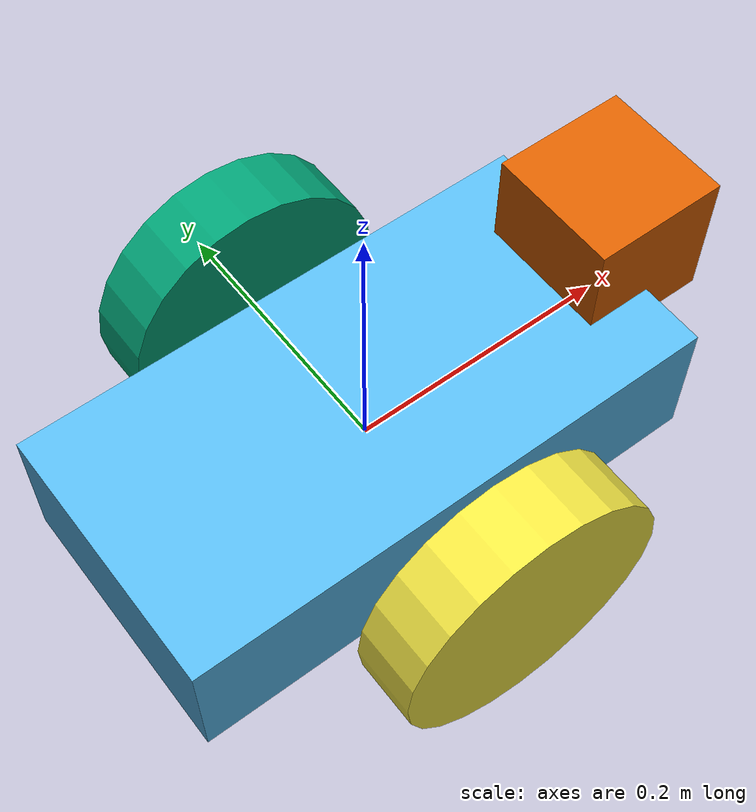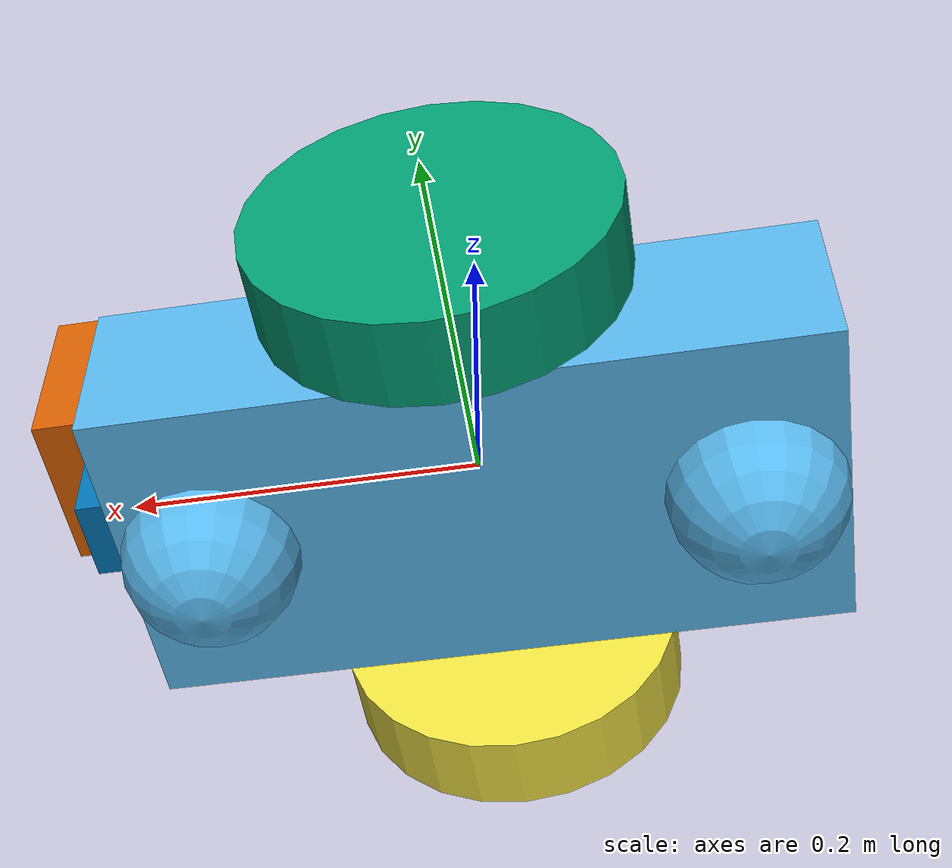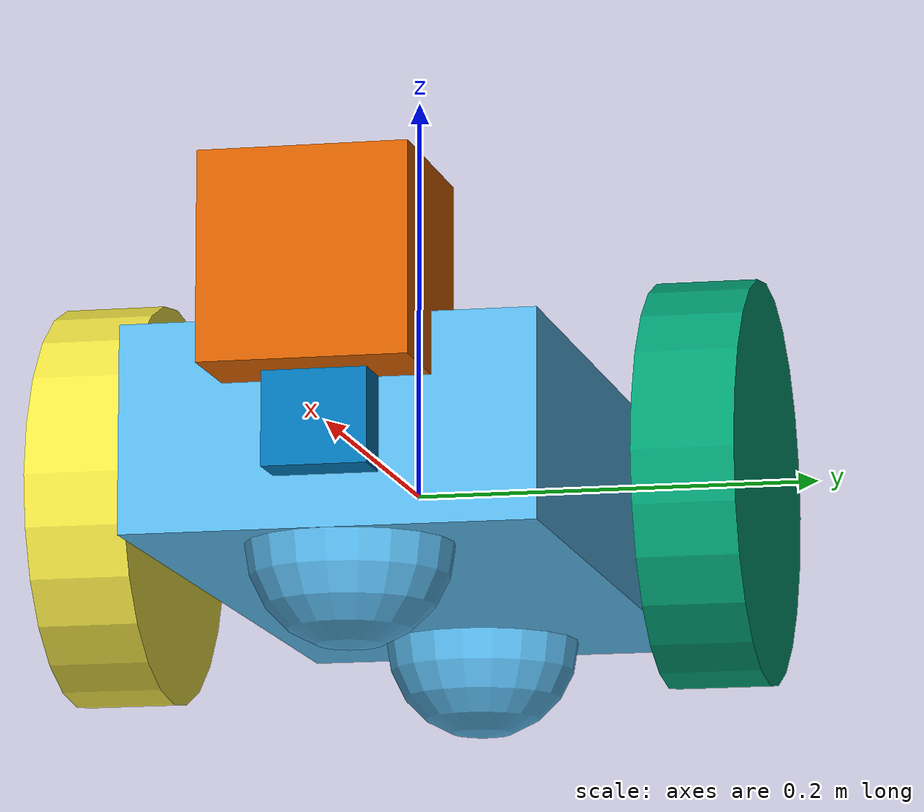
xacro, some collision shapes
<?xml version='1.0'?>

<robot name="my_robot" xmlns:xacro="http://www.ros.org/wiki/xacro">

  <xacro:include filename="$(find my_robot)/urdf/my_robot.gazebo" />

  <link name="robot_footprint"></link>

  <joint name="robot_footprint_joint" type="fixed">
    <origin xyz="0 0 0" rpy="0 0 0" />
    <parent link="robot_footprint"/>
    <child link="chassis" />
  </joint>

  <link name='chassis'>
    <pose>0 0 0.1 0 0 0</pose>

    <inertial>
      <mass value="15.0"/>
      <origin xyz="0.0 0 0" rpy=" 0 0 0"/>
      <inertia
          ixx="0.1" ixy="0" ixz="0"
          iyy="0.1" iyz="0"
          izz="0.1"
      />
    </inertial>

    <collision name='collision'>
      <origin xyz="0 0 0" rpy=" 0 0 0"/>
      <geometry>
        <box size=".4 .2 .1"/>
      </geometry>
    </collision>

    <visual name='chassis_visual'>
      <origin xyz="0 0 0" rpy=" 0 0 0"/>
      <geometry>
        <box size=".4 .2 .1"/>
      </geometry>
    </visual>

    <collision name='back_caster_collision'>
      <origin xyz="-0.15 0 -0.05" rpy=" 0 0 0"/>
      <geometry>
        <sphere radius="0.0499"/>
      </geometry>
    </collision>

    <visual name='back_caster_visual'>
      <origin xyz="-0.15 0 -0.05" rpy=" 0 0 0"/>
      <geometry>
        <sphere radius="0.05"/>
      </geometry>
    </visual>

    <collision name='front_caster_collision'>
      <origin xyz="0.15 0 -0.05" rpy=" 0 0 0"/>
      <geometry>
        <sphere radius="0.0499"/>
      </geometry>
    </collision>

    <visual name='front_caster_visual'>
      <origin xyz="0.15 0 -0.05" rpy=" 0 0 0"/>
      <geometry>
        <sphere radius="0.05"/>
      </geometry>
    </visual>

  </link>

  <link name="left_wheel">

	<collision name='left_wheel_collision'>
      <origin xyz="0.0 0 0" rpy=" 0 1.5707 1.5707"/>
      <geometry>
        <cylinder length="0.05" radius="0.1"/>
      </geometry>
    </collision>

    <inertial>
      <mass value=".5"/>
      <origin xyz="0 0 0" rpy=" 0 1.5707 1.5707"/>
      <inertia
          ixx="0.1" ixy="0" ixz="0"
          iyy="0.1" iyz="0"
          izz="0.1"
      />
    </inertial>

	<visual name='left_wheel__visual'>
      <origin xyz="0.0 0 0" rpy=" 0 1.5707 1.5707"/>
      <geometry>
        <cylinder length="0.05" radius="0.1"/>
      </geometry>
    </visual>

  </link>

  <link name="right_wheel">

	<collision name='right_wheel_collision'>
      <origin xyz="0.0 0 0" rpy=" 0 1.5707 1.5707"/>
      <geometry>
        <cylinder length="0.05" radius="0.1"/>
	  </geometry>
    </collision>

    <inertial>
      <mass value=".5"/>
      <origin xyz="0 0 0" rpy=" 0 1.5707 1.5707"/>
      <inertia
          ixx="0.1" ixy="0" ixz="0"
          iyy="0.1" iyz="0"
          izz="0.1"
      />
    </inertial>

	<visual name='right_wheel_visual'>
      <origin xyz="0.0 0 0" rpy=" 0 1.5707 1.5707"/>
      <geometry>
        <cylinder length="0.05" radius="0.1"/>
      </geometry>
    </visual>

  </link>

  <joint type="continuous" name="left_wheel_hinge">
    <origin xyz="0 0.15 0" rpy="0 0 0"/>
    <child link="left_wheel"/>
    <parent link="chassis"/>
    <axis xyz="0 1 0" rpy="0 0 0"/>
    <limit effort="10000" velocity="1000"/>
    <dynamics damping="1.0" friction="1.0"/>
  </joint>

  <joint type="continuous" name="right_wheel_hinge">
    <origin xyz="0 -0.15 0" rpy="0 0 0"/>
    <child link="right_wheel"/>
    <parent link="chassis"/>
    <axis xyz="0 1 0" rpy="0 0 0"/>
    <limit effort="10000" velocity="1000"/>
    <dynamics damping="1.0" friction="1.0"/>
  </joint>

   <link name='camera'>
    <inertial>
      <origin xyz="0 0 0" rpy="0 0 0"/>
      <mass value="0.1"/>
      <box_inertia m="0.1" x="0.05" y="0.05" z="0.05"/>
      <inertia
          ixx="1e-6" ixy="0" ixz="0"
          iyy="1e-6" iyz="0"
          izz="1e-6"
      />
    </inertial>

    <visual name='camera_visual'>
      <origin xyz="0 0 0" rpy="0 0 0"/>
      <geometry>
        <box size=".05 .05 .05"/>
      </geometry>
    </visual>

    <collision name='camera_collision'>
      <origin xyz="0 0 0" rpy="0 0 0"/>
      <geometry>
        <box size=".05 .05 .05"/>
      </geometry>
    </collision>
  </link>

  <joint type="fixed" name="camera_joint">
    <origin xyz="0.2 0 0" rpy="0 0 0"/>
    <child link="camera"/>
    <parent link="chassis"/>
    <axis xyz="0 1 0"/>
  </joint>

  <link name='hokuyo'>
    <inertial>
      <origin xyz="0 0 0" rpy="0 0 0"/>
      <mass value="1e-5"/>
      <inertia
          ixx="1e-6" ixy="0" ixz="0"
          iyy="1e-6" iyz="0"
          izz="1e-6"
      />
    </inertial>

    <visual name='hokuyo_visual'>
      <origin xyz="0 0 0" rpy="0 0 0"/>
      <geometry>
        <mesh filename="package://my_robot/meshes/hokuyo.dae"/>
      </geometry>
    </visual>

    <collision name='hokuyo_collision'>
      <origin xyz="0 0 0" rpy="0 0 0"/>
      <geometry>
        <box size=".1 .1 .1"/>
      </geometry>
    </collision>
  </link>

  <joint type="fixed" name="hokuyo_joint">
    <origin xyz="0.2 0 .07" rpy="0 0 0"/>
    <child link="hokuyo"/>
    <parent link="chassis"/>
    <axis xyz="0 1 0"/>
  </joint>

  <link name="camera_link_optical">
  </link>

  <joint name="camera_optical_joint" type="fixed">
    <origin xyz="0 0 0" rpy="0 0 0"/>
    <parent link="camera"/>
    <child link="camera_link_optical"/>
  </joint>

</robot>
